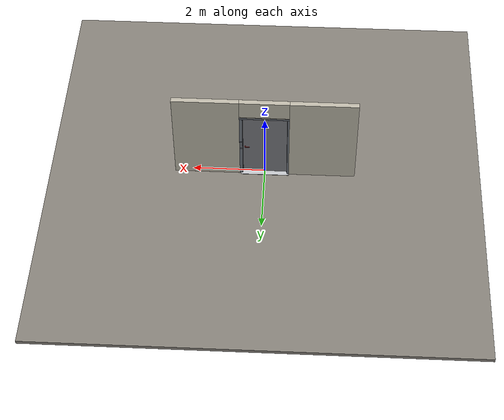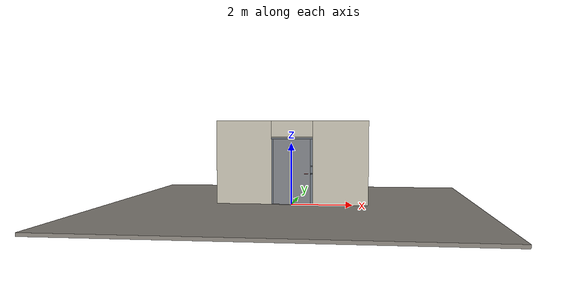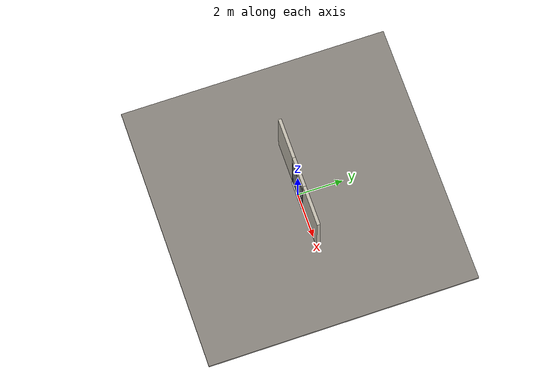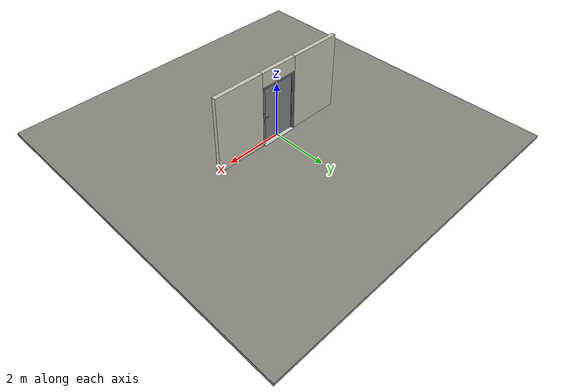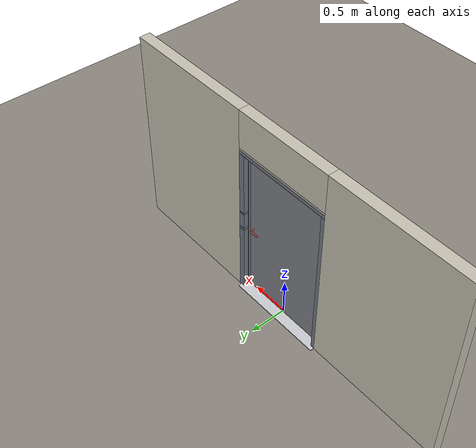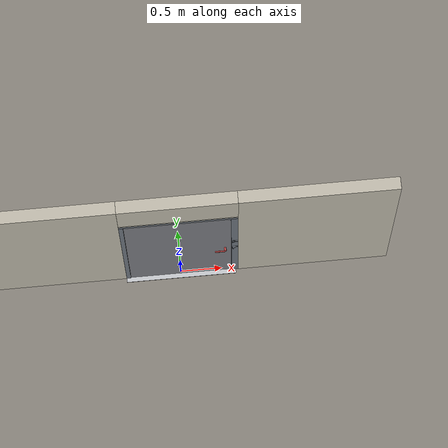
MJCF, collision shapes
<?xml version="1.0" ?>
<mujoco model="db0814_swing_single_minimal">
  <compiler angle="radian" meshdir="../../hardware" texturedir="../../textures" autolimits="true" inertiafromgeom="false"/>
  <option timestep="0.002" integrator="implicitfast" cone="elliptic" impratio="10" noslip_iterations="3">
    <flag multiccd="enable"/>
  </option>
  <size memory="16M"/>
  <default>
    <geom condim="4" solref="0.005 1" solimp="0.95 0.99 0.001"/>
    <joint solreflimit="0.005 1" solimplimit="0.95 0.99 0.001"/>
    <tendon solreflimit="0.005 1"/>
    <equality solref="0.002 1"/>
  </default>
  <visual>
    <headlight ambient="0.4 0.4 0.4" diffuse="0.7 0.7 0.7" specular="0.2 0.2 0.2"/>
    <quality shadowsize="4096"/>
    <map znear="0.01" zfar="60"/>
  </visual>
  <asset>
    <mesh name="lever_9f02b544cf" file="lever_9f02b544cf.obj"/>
    <material name="mat_floor" rgba="0.55 0.53 0.5 1" specular="0.2" shininess="0.15" reflectance="0"/>
    <material name="mat_wall" rgba="0.78 0.76 0.7 1" specular="0.2" shininess="0.1" reflectance="0"/>
    <material name="mat_leaf" rgba="0.5 0.51 0.53 1" specular="0.23" shininess="0.51" reflectance="0.02"/>
    <material name="mat_hinge" rgba="0.45 0.3 0.22 1" specular="0.5" shininess="0.1" reflectance="0.2"/>
    <material name="mat_op_nickel_satin" rgba="0.72 0.7 0.66 1" specular="0.8" shininess="0.65" reflectance="0.4"/>
    <material name="mat_trim" rgba="0.85 0.66 0.3 1" specular="0.8" shininess="0.75" reflectance="0.4"/>
    <material name="mat_bolt" rgba="0.85 0.66 0.3 1" specular="0.8" shininess="0.75" reflectance="0.4"/>
    <material name="mat_op_brass" rgba="0.85 0.66 0.3 1" specular="0.8" shininess="0.75" reflectance="0.4"/>
    <material name="mat_frame" rgba="0.45 0.48 0.52 1" specular="0.32" shininess="0.6" reflectance="0.08"/>
    <material name="mat_threshold" rgba="0.8 0.81 0.83 1" specular="0.8" shininess="0.6" reflectance="0.4"/>
    <material name="mat_vent" rgba="0.8 0.81 0.83 1" specular="0.8" shininess="0.6" reflectance="0.4"/>
    <material name="mat_placard" rgba="0.95 0.75 0.05 1" specular="0.2" shininess="0.5" reflectance="0"/>
    <material name="mat_bumper_stop" rgba="0.08 0.08 0.08 1" specular="0.2" shininess="0.1" reflectance="0"/>
    <material name="mat_stop_base" rgba="0.9 0.9 0.92 1" specular="0.8" shininess="0.9" reflectance="0.4"/>
    <texture name="skybox" type="skybox" builtin="gradient" rgb1="0.6 0.7 0.85" rgb2="0.9 0.92 0.95" width="256" height="256"/>
  </asset>
  <worldbody>
    <light name="sun" pos="1.5 -2.5 4" dir="-0.3 0.5 -0.8" directional="true" diffuse="0.8 0.8 0.8" specular="0.3 0.3 0.3" castshadow="true"/>
    <light name="fill" pos="-1.5 2.5 3" dir="0.3 -0.5 -0.7" directional="true" diffuse="0.35 0.35 0.4" castshadow="false"/>
    <camera name="robot_view" pos="0 -2.594313 1.812087" xyaxes="1 0 0 0 0.26963 0.962964" fovy="52"/>
    <camera name="far_view" pos="0 2.681312 1.812087" xyaxes="-1 0 0 0 -0.26963 0.962964" fovy="52"/>
    <camera name="iso" pos="2.004737 -2.172262 2.234138" xyaxes="0.741536 0.670913 0 -0.242917 0.268487 0.932151" fovy="46"/>
    <camera name="detail_handle" pos="0.619 -0.877 1.296" xyaxes="0.97561 0.219512 0 -0.070934 0.315262 0.94635" fovy="38"/>
    <geom name="floor" type="box" size="6 6 0.05" pos="0 0 -0.05" material="mat_floor" group="0" contype="1" conaffinity="1" friction="0.8 0.005 0.0001" density="2400"/>
    <geom name="wall_left" type="box" size="0.9185 0.0725 1.3735" pos="-1.5815 0.0435 1.3735" material="mat_wall" group="0" contype="1" conaffinity="1" friction="0.6 0.005 0.0001" density="800"/>
    <geom name="wall_right" type="box" size="0.9035 0.0725 1.3735" pos="1.5965 0.0435 1.3735" material="mat_wall" group="0" contype="1" conaffinity="1" friction="0.6 0.005 0.0001" density="800"/>
    <geom name="wall_header" type="box" size="0.678 0.0725 0.26" pos="0.015 0.0435 2.487" material="mat_wall" group="0" contype="1" conaffinity="1" friction="0.6 0.005 0.0001" density="800"/>
    <geom name="jamb_hinge" type="box" size="0.025 0.0725 1.0735" pos="-0.638 0.0435 1.0735" material="mat_frame" group="0" contype="1" conaffinity="1" friction="0.6 0.005 0.0001" density="300"/>
    <geom name="strike_1016_wall_n" type="box" size="0.04 0.05325 0.0183" pos="0.653 0.06275 1.016" material="mat_frame" group="0" contype="1" conaffinity="1" friction="0.6 0.005 0.0001" density="300"/>
    <geom name="strike_1016_wall_p" type="box" size="0.04 0.008 0.0183" pos="0.653 -0.0175 1.016" material="mat_frame" group="0" contype="1" conaffinity="1" friction="0.6 0.005 0.0001" density="300"/>
    <geom name="strike_1016_ramp" type="box" size="0.04 0.018028 0.0183" pos="0.656282 -0.018312 1.016" quat="0.957092 0 0 0.289784" material="mat_frame" group="0" contype="1" conaffinity="1" friction="0.12 0.005 0.0001" density="300"/>
    <geom name="strike_1016_back" type="box" size="0.0285 0.0095 0.0183" pos="0.6645 0 1.016" material="mat_frame" group="0" contype="1" conaffinity="1" friction="0.6 0.005 0.0001" density="300"/>
    <geom name="strike_1266_wall_n" type="box" size="0.04 0.071 0.01" pos="0.653 0.045 1.266" material="mat_frame" group="0" contype="1" conaffinity="1" friction="0.6 0.005 0.0001" density="300"/>
    <geom name="strike_1266_wall_p" type="box" size="0.022 0.003 0.01" pos="0.635 -0.045 1.266" material="mat_frame" group="0" contype="1" conaffinity="1" friction="0.6 0.005 0.0001" density="300"/>
    <geom name="strike_1266_back" type="box" size="0.019 0.008 0.01" pos="0.674 -0.034 1.266" material="mat_frame" group="0" contype="1" conaffinity="1" friction="0.6 0.005 0.0001" density="300"/>
    <geom name="jamb_strike_0" type="box" size="0.04 0.0725 0.49885" pos="0.653 0.0435 0.49885" material="mat_frame" group="0" contype="1" conaffinity="1" friction="0.6 0.005 0.0001" density="300"/>
    <geom name="jamb_strike_1" type="box" size="0.04 0.0725 0.11085" pos="0.653 0.0435 1.14515" material="mat_frame" group="0" contype="1" conaffinity="1" friction="0.6 0.005 0.0001" density="300"/>
    <geom name="jamb_strike_2" type="box" size="0.04 0.0725 0.4355" pos="0.653 0.0435 1.7115" material="mat_frame" group="0" contype="1" conaffinity="1" friction="0.6 0.005 0.0001" density="300"/>
    <geom name="jamb_head" type="box" size="0.678 0.0725 0.025" pos="0.015 0.0435 2.172" material="mat_frame" group="0" contype="1" conaffinity="1" friction="0.6 0.005 0.0001" density="300"/>
    <geom name="head_stud" type="box" size="0.678 0.0725 0.015" pos="0.015 0.0435 2.212" material="mat_wall" group="0" contype="1" conaffinity="1" friction="0.6 0.005 0.0001" density="500"/>
    <geom name="stop_hinge" type="box" size="0.0055 0.016 1.0735" pos="-0.6075 0.0385 1.0735" material="mat_frame" group="0" contype="1" conaffinity="1" friction="0.6 0.005 0.0001" density="300"/>
    <geom name="stop_strike" type="box" size="0.0055 0.016 1.0735" pos="0.6075 0.0385 1.0735" material="mat_frame" group="0" contype="1" conaffinity="1" friction="0.6 0.005 0.0001" density="300"/>
    <geom name="stop_head" type="box" size="0.613 0.016 0.0055" pos="0 0.0385 2.1415" material="mat_frame" group="0" contype="1" conaffinity="1" friction="0.6 0.005 0.0001" density="300"/>
    <geom name="threshold" type="box" size="0.663 0.1225 0.004" pos="0 0.0435 0.004" material="mat_threshold" group="0" contype="1" conaffinity="1" friction="0.6 0.005 0.0001" density="2700"/>
    <site name="approach_point" pos="0 -1.5 0" quat="1 0 0 0" size="0.05" rgba="0.2 0.9 0.2 0.5" group="4"/>
    <site name="goal_point" pos="0 1.5 0" quat="1 0 0 0" size="0.05" rgba="0.2 0.9 0.2 0.5" group="4"/>
    <site name="door_plane_center" pos="0 0 1.0735" quat="1 0 0 0" size="0.02" rgba="0.2 0.9 0.2 0.5" group="4"/>
    <body name="leaf" pos="-0.613 0 0">
      <inertial pos="0.6125 0 1.076" mass="65.233475" quat="-0.5 0.5 0.5 0.5" diaginertia="8.088390983 24.766388919 32.833731234"/>
      <joint name="leaf_hinge" type="hinge" axis="0 0 -1" pos="0.003 -0.029 0" limited="true" range="0 1.570796" damping="0.900995" frictionloss="14.506089" armature="0.02"/>
      <geom name="leaf_slab" type="box" size="0.6095 0.022 1.067" pos="0.6125 0 1.076" material="mat_leaf" group="0" contype="1" conaffinity="1" friction="0.4 0.005 0.0001" density="1"/>
      <site name="leaf_edge_mid" pos="1.222 0 1.067" quat="1 0 0 0" size="0.02" rgba="0.2 0.9 0.2 0.5" group="4"/>
      <body name="leaf_handle" pos="1.152 0 1.016">
        <inertial pos="-0.030188 0 0" mass="0.924918" quat="0.707107 0 0 -0.707107" diaginertia="0.001725188 0.003587995 0.005135939"/>
        <joint name="leaf_handle_hinge" type="hinge" axis="0 -1 0" limited="true" range="0 0.96" damping="0.245624" frictionloss="0.048" stiffness="1.2" springref="-0.458333" armature="0.01"/>
        <geom name="leaf_handle_lever_n" type="mesh" mesh="lever_9f02b544cf" pos="0 -0.022 0" quat="0.707107 0.707107 0 0" material="mat_op_nickel_satin" group="1" contype="0" conaffinity="0" density="3000"/>
        <geom name="leaf_handle_lever_col_n" type="capsule" size="0.0095 0.053" pos="-0.0625 -0.077 0" quat="0.707107 0 -0.707107 0" material="mat_op_nickel_satin" group="3" contype="1" conaffinity="1" rgba="0.8 0.3 0.3 0.25" friction="0.7 0.01 0.0001" density="3000"/>
        <geom name="leaf_handle_hub_col_n" type="cylinder" size="0.012 0.022" pos="0 -0.052 0" quat="0.707107 -0.707107 0 0" material="mat_op_nickel_satin" group="3" contype="1" conaffinity="1" rgba="0.8 0.3 0.3 0.25" friction="0.6 0.005 0.0001" density="3000"/>
        <geom name="leaf_handle_lever_p" type="mesh" mesh="lever_9f02b544cf" pos="0 0.022 0" quat="-0.707107 0.707107 0 0" material="mat_op_nickel_satin" group="1" contype="0" conaffinity="0" density="3000"/>
        <geom name="leaf_handle_lever_col_p" type="capsule" size="0.0095 0.053" pos="-0.0625 0.077 0" quat="0.707107 0 -0.707107 0" material="mat_op_nickel_satin" group="3" contype="1" conaffinity="1" rgba="0.8 0.3 0.3 0.25" friction="0.7 0.01 0.0001" density="3000"/>
        <geom name="leaf_handle_hub_col_p" type="cylinder" size="0.012 0.022" pos="0 0.052 0" quat="0.707107 -0.707107 0 0" material="mat_op_nickel_satin" group="3" contype="1" conaffinity="1" rgba="0.8 0.3 0.3 0.25" friction="0.6 0.005 0.0001" density="3000"/>
        <site name="leaf_handle_grip_n" pos="-0.1 -0.077 0" quat="1 0 0 0" size="0.012" rgba="0.2 0.9 0.2 0.5" group="4"/>
        <site name="leaf_handle_grip_p" pos="-0.1 0.077 0" quat="1 0 0 0" size="0.012" rgba="0.2 0.9 0.2 0.5" group="4"/>
      </body>
      <body name="leaf_latch_bolt" pos="1.222 0 1.016">
        <inertial pos="-0.0055 0 0" mass="0.074627" quat="0.92388 -0.382683 0 0" diaginertia="0.000002271 0.000013255 0.000013255"/>
        <joint name="leaf_latch_bolt_slide" type="slide" axis="-1 0 0" limited="true" range="0 0.019" damping="2" frictionloss="0.3" stiffness="600" springref="-0.01" armature="0.1"/>
        <geom name="leaf_latch_bolt_capsule" type="capsule" size="0.008 0.0165" pos="-0.0055 0 0" quat="0.707107 0 0.707107 0" material="mat_bolt" group="0" contype="1" conaffinity="1" friction="0.2 0.005 0.0001" density="8500"/>
      </body>
    </body>
  </worldbody>
  <tendon>
    <fixed name="leaf_latch_bolt_coupling" limited="true" range="0 10">
      <joint joint="leaf_latch_bolt_slide" coef="1"/>
      <joint joint="leaf_handle_hinge" coef="-0.020879"/>
    </fixed>
  </tendon>
  <sensor>
    <jointpos name="leaf_hinge_pos" joint="leaf_hinge"/>
    <jointvel name="leaf_hinge_vel" joint="leaf_hinge"/>
    <jointpos name="leaf_handle_hinge_pos" joint="leaf_handle_hinge"/>
    <jointvel name="leaf_handle_hinge_vel" joint="leaf_handle_hinge"/>
    <jointpos name="leaf_latch_bolt_slide_pos" joint="leaf_latch_bolt_slide"/>
    <jointvel name="leaf_latch_bolt_slide_vel" joint="leaf_latch_bolt_slide"/>
  </sensor>
</mujoco>
